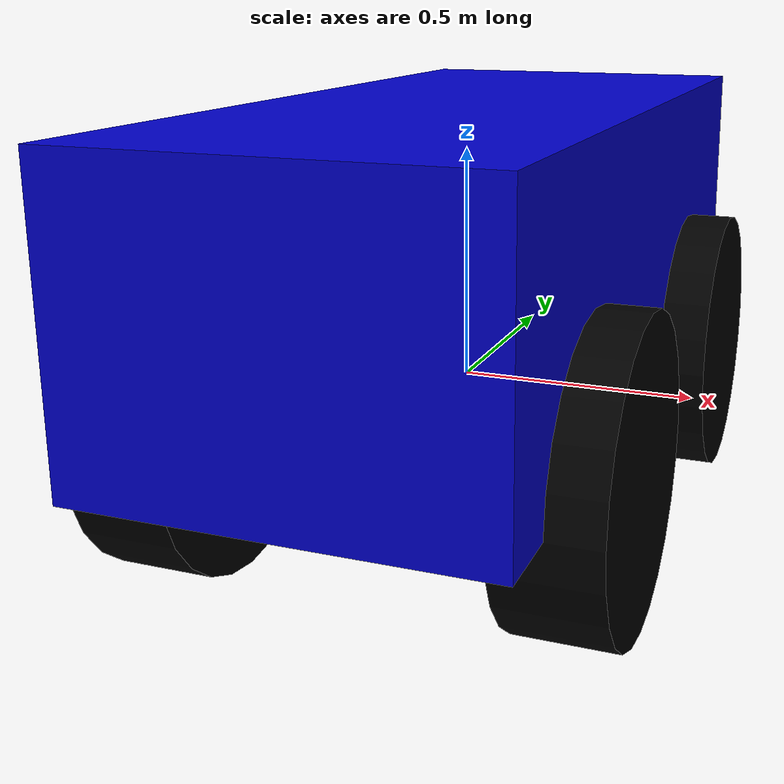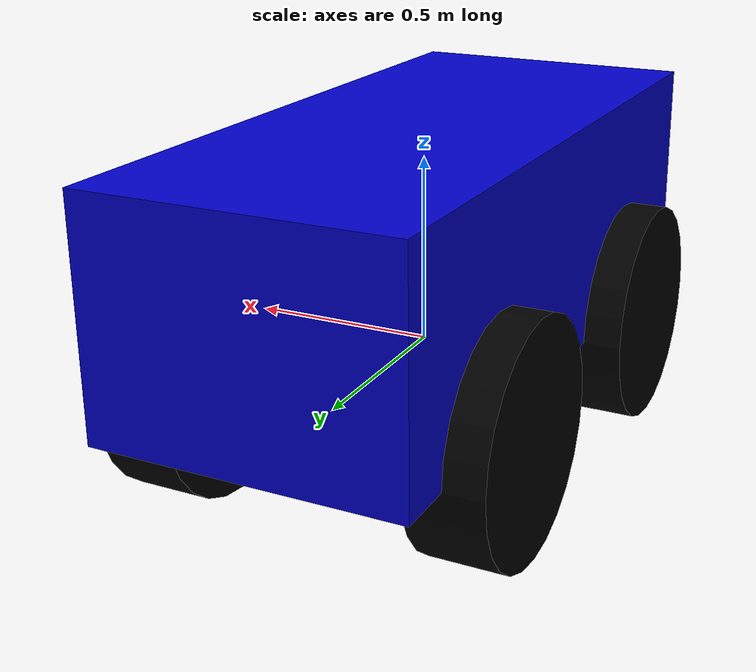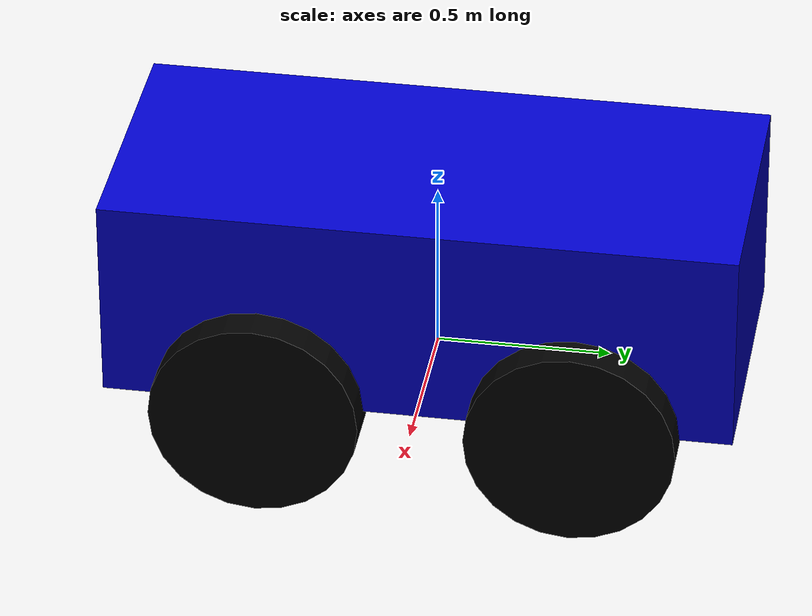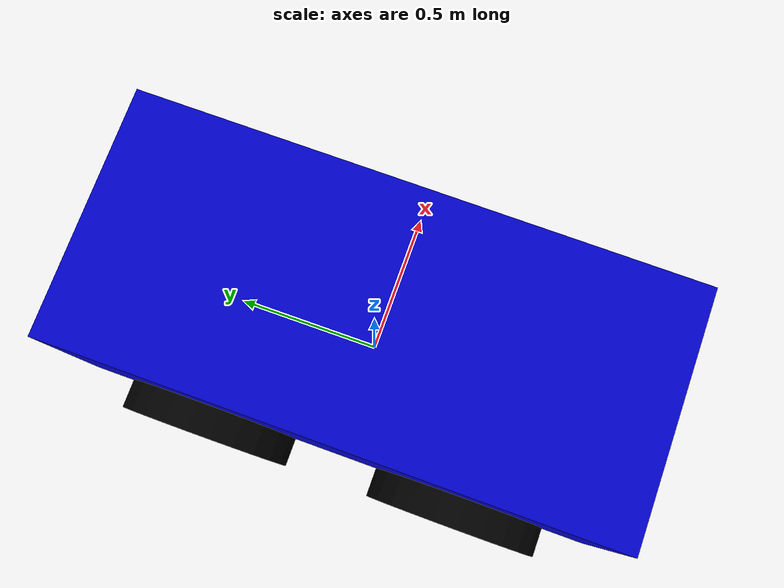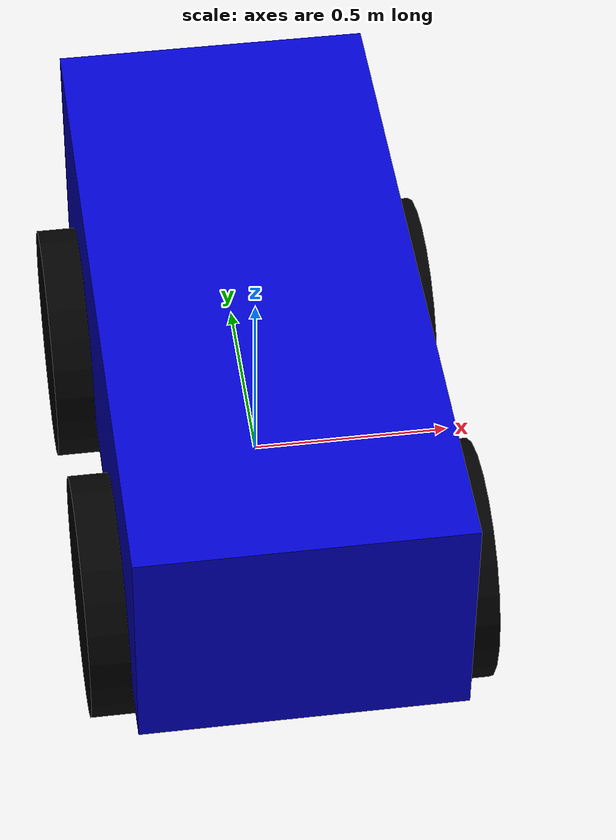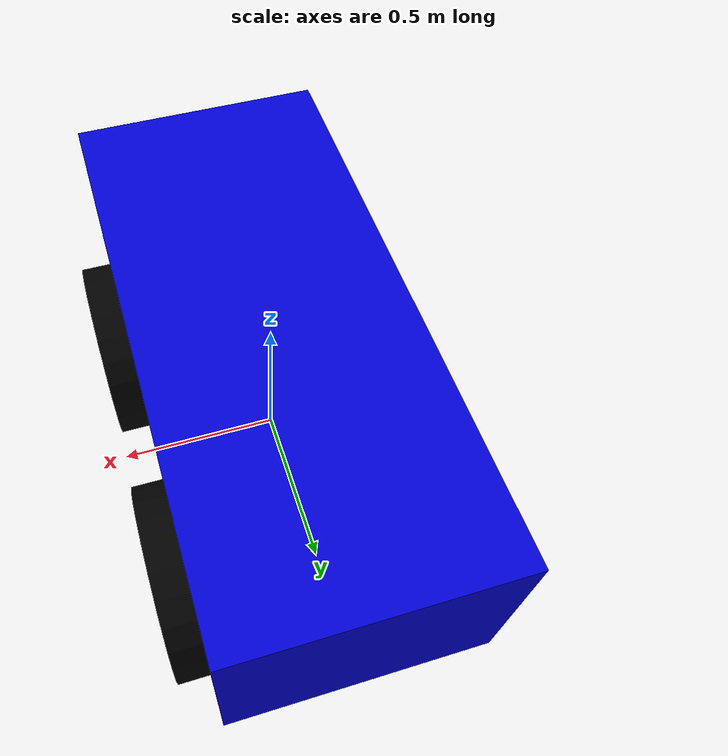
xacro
<?xml version="1.0"?>

<robot name="myrobot" xmlns:xacro="http://ros.org/wiki/xacro">

    <xacro:property name="width" value="0.8" />
    <xacro:property name="bodylen" value="1.8" />
    <xacro:property name="height" value="0.6" />
    <xacro:property name="wheellen" value="0.2" />
    <xacro:property name="wheeldiam" value="0.6" />
    <xacro:property name="pi" value="3.1415" />

    <material name="blue">
        <color rgba="0 0 0.8 1"/>
    </material>
    <material name="white">
        <color rgba="1 1 1 1"/>
    </material>
    <material name="black">
        <color rgba="0 0 0 1"/>
    </material>

    <xacro:macro name="default_inertial" params="mass">
        <inertial>
            <mass value="${mass}" />
            <inertia ixx="1.0" ixy="0.0" ixz="0.0" iyy="1.0" iyz="0.0" izz="1.0" />
        </inertial>
    </xacro:macro>

    <link name="base_link">
        <visual>
            <origin rpy="0 0 0" xyz="0 0 0.3"/>
            <geometry>
                <box size="${width} ${bodylen} ${height}"/>
            </geometry>
            <material name="blue"/>
        </visual>
        <collision>
            <geometry>
                <box size="${width} ${bodylen} ${height}"/>
            </geometry>
        </collision>
        <xacro:default_inertial mass="10"/>
    </link>

     <xacro:macro name="wheel" params="prefix suffix reflect_x reflect_y">

        <link name="${prefix}_${suffix}_wheel">
            <visual>
                <origin xyz="0 0 0" rpy="0 ${pi/2} 0" />
                <geometry>
                    <cylinder radius="${wheeldiam/2}" length="${wheellen}"/>
                </geometry>
                <material name="black"/>
            </visual>
            <collision>
                <origin xyz="0 0 0" rpy="0 ${pi/2} 0" />
                <geometry>
                    <cylinder radius="${wheeldiam/2}" length="${wheellen}"/>
                </geometry>
            </collision>
            <xacro:default_inertial mass="1"/>
        </link>
        <joint name="${prefix}_${suffix}_wheel_joint" type="continuous">
            <axis xyz="1 0 0" rpy="0 0 0" />
            <parent link="base_link"/>
            <child link="${prefix}_${suffix}_wheel"/>
            <origin xyz="${reflect_x*width/2} ${reflect_y*bodylen/4} 0" rpy="0 0 0"/>
        </joint>

        <!-- This block provides the simulator (Gazebo) with information on a few additional physical properties. See http://gazebosim.org/tutorials/?tut=ros_urdf for more-->
        <gazebo reference="${prefix}_${suffix}_wheel">
            <mu1 value="200.0" />
            <mu2 value="100.0" />
            <kp value="10000000.0" />
            <kd value="1.0" />
            <material>Gazebo/Grey</material>
        </gazebo>

        <!-- This block connects the wheel joint to an actuator (motor), which informs both simulation and visualization of the robot -->
        <transmission name="${prefix}_${suffix}_wheel_trans">
            <type>transmission_interface/SimpleTransmission</type>
            <actuator name="${prefix}_${suffix}_wheel_motor">
                <mechanicalReduction>1</mechanicalReduction>
            </actuator>
            <joint name="${prefix}_${suffix}_wheel_joint">
                <hardwareInterface>VelocityJointInterface</hardwareInterface>
            </joint>
        </transmission>

    </xacro:macro>

    <xacro:wheel prefix="right" suffix="front" reflect_x="1" reflect_y="1" />
    <xacro:wheel prefix="left" suffix="front" reflect_x="-1" reflect_y="1" />
    <xacro:wheel prefix="right" suffix="back" reflect_x="1" reflect_y="-1" />
    <xacro:wheel prefix="left" suffix="back" reflect_x="-1" reflect_y="-1" />

    <!-- Gazebo plugin for ROS Control -->
    <gazebo>
        <plugin name="gazebo_ros_control" filename="libgazebo_ros_control.so">
            <robotNamespace>/</robotNamespace>
        </plugin>
    </gazebo>

</robot>
